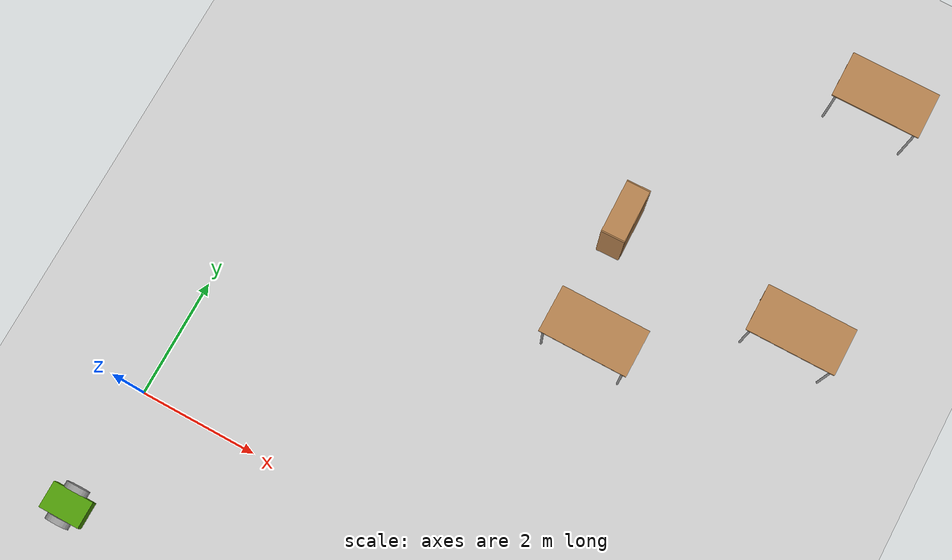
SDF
<sdf version="1.6">
 <world name="default">
  <model name="ground_plane">
   <static>1</static>
   <link name="link">
    <collision name="collision">
     <geometry><plane><normal>0 0 1</normal><size>100 100</size></plane></geometry>
     <surface>
      <contact><collide_bitmask>65535</collide_bitmask></contact>
      <friction><ode><mu>100</mu><mu2>50</mu2></ode></friction>
     </surface>
    </collision>
    <visual name="visual">
     <cast_shadows>0</cast_shadows>
     <geometry><plane><normal>0 0 1</normal><size>100 100</size></plane></geometry>
     <material>
      <script><uri>file://media/materials/scripts/gazebo.material</uri><name>Gazebo/Grey</name></script>
     </material>
    </visual>
   </link>
  </model>
  <model name="table_7">
   <static>1</static>
   <link name="link">
    <collision name="surface">
     <pose>0 0 1 0 -0 0</pose>
     <geometry><box><size>1.5 0.8 0.03</size></box></geometry>
     <surface><friction><ode><mu>0.6</mu><mu2>0.6</mu2></ode></friction></surface>
    </collision>
    <visual name="visual1">
     <pose>0 0 1 0 -0 0</pose>
     <geometry><box><size>1.5 0.8 0.03</size></box></geometry>
     <material>
      <script><uri>file://media/materials/scripts/gazebo.material</uri><name>Gazebo/Wood</name></script>
     </material>
    </visual>
    <collision name="front_left_leg">
     <pose>0.68 0.38 0.5 0 -0 0</pose>
     <geometry><cylinder><radius>0.02</radius><length>1</length></cylinder></geometry>
    </collision>
    <visual name="front_left_leg">
     <pose>0.68 0.38 0.5 0 -0 0</pose>
     <geometry><cylinder><radius>0.02</radius><length>1</length></cylinder></geometry>
     <material>
      <script><uri>file://media/materials/scripts/gazebo.material</uri><name>Gazebo/Grey</name></script>
     </material>
    </visual>
    <collision name="front_right_leg">
     <pose>0.68 -0.38 0.5 0 -0 0</pose>
     <geometry><cylinder><radius>0.02</radius><length>1</length></cylinder></geometry>
    </collision>
    <visual name="front_right_leg">
     <pose>0.68 -0.38 0.5 0 -0 0</pose>
     <geometry><cylinder><radius>0.02</radius><length>1</length></cylinder></geometry>
     <material>
      <script><uri>file://media/materials/scripts/gazebo.material</uri><name>Gazebo/Grey</name></script>
     </material>
    </visual>
    <collision name="back_right_leg">
     <pose>-0.68 -0.38 0.5 0 -0 0</pose>
     <geometry><cylinder><radius>0.02</radius><length>1</length></cylinder></geometry>
    </collision>
    <visual name="back_right_leg">
     <pose>-0.68 -0.38 0.5 0 -0 0</pose>
     <geometry><cylinder><radius>0.02</radius><length>1</length></cylinder></geometry>
     <material>
      <script><uri>file://media/materials/scripts/gazebo.material</uri><name>Gazebo/Grey</name></script>
     </material>
    </visual>
    <collision name="back_left_leg">
     <pose>-0.68 0.38 0.5 0 -0 0</pose>
     <geometry><cylinder><radius>0.02</radius><length>1</length></cylinder></geometry>
    </collision>
    <visual name="back_left_leg">
     <pose>-0.68 0.38 0.5 0 -0 0</pose>
     <geometry><cylinder><radius>0.02</radius><length>1</length></cylinder></geometry>
     <material>
      <script><uri>file://media/materials/scripts/gazebo.material</uri><name>Gazebo/Grey</name></script>
     </material>
    </visual>
   </link>
   <pose>5.79968 4.06342 0 0 -0 0</pose>
  </model>
  <model name="table_8">
   <static>1</static>
   <link name="link">
    <collision name="surface">
     <pose>0 0 1 0 -0 0</pose>
     <geometry><box><size>1.5 0.8 0.03</size></box></geometry>
     <surface><friction><ode><mu>0.6</mu><mu2>0.6</mu2></ode></friction></surface>
    </collision>
    <visual name="visual1">
     <pose>0 0 1 0 -0 0</pose>
     <geometry><box><size>1.5 0.8 0.03</size></box></geometry>
     <material>
      <script><uri>file://media/materials/scripts/gazebo.material</uri><name>Gazebo/Wood</name></script>
     </material>
    </visual>
    <collision name="front_left_leg">
     <pose>0.68 0.38 0.5 0 -0 0</pose>
     <geometry><cylinder><radius>0.02</radius><length>1</length></cylinder></geometry>
    </collision>
    <visual name="front_left_leg">
     <pose>0.68 0.38 0.5 0 -0 0</pose>
     <geometry><cylinder><radius>0.02</radius><length>1</length></cylinder></geometry>
     <material>
      <script><uri>file://media/materials/scripts/gazebo.material</uri><name>Gazebo/Grey</name></script>
     </material>
    </visual>
    <collision name="front_right_leg">
     <pose>0.68 -0.38 0.5 0 -0 0</pose>
     <geometry><cylinder><radius>0.02</radius><length>1</length></cylinder></geometry>
    </collision>
    <visual name="front_right_leg">
     <pose>0.68 -0.38 0.5 0 -0 0</pose>
     <geometry><cylinder><radius>0.02</radius><length>1</length></cylinder></geometry>
     <material>
      <script><uri>file://media/materials/scripts/gazebo.material</uri><name>Gazebo/Grey</name></script>
     </material>
    </visual>
    <collision name="back_right_leg">
     <pose>-0.68 -0.38 0.5 0 -0 0</pose>
     <geometry><cylinder><radius>0.02</radius><length>1</length></cylinder></geometry>
    </collision>
    <visual name="back_right_leg">
     <pose>-0.68 -0.38 0.5 0 -0 0</pose>
     <geometry><cylinder><radius>0.02</radius><length>1</length></cylinder></geometry>
     <material>
      <script><uri>file://media/materials/scripts/gazebo.material</uri><name>Gazebo/Grey</name></script>
     </material>
    </visual>
    <collision name="back_left_leg">
     <pose>-0.68 0.38 0.5 0 -0 0</pose>
     <geometry><cylinder><radius>0.02</radius><length>1</length></cylinder></geometry>
    </collision>
    <visual name="back_left_leg">
     <pose>-0.68 0.38 0.5 0 -0 0</pose>
     <geometry><cylinder><radius>0.02</radius><length>1</length></cylinder></geometry>
     <material>
      <script><uri>file://media/materials/scripts/gazebo.material</uri><name>Gazebo/Grey</name></script>
     </material>
    </visual>
   </link>
   <pose>8.08114 9.58618 0 0 -0 0</pose>
  </model>
  <model name="table_9">
   <static>1</static>
   <link name="link">
    <collision name="surface">
     <pose>0 0 1 0 -0 0</pose>
     <geometry><box><size>1.5 0.8 0.03</size></box></geometry>
     <surface><friction><ode><mu>0.6</mu><mu2>0.6</mu2></ode></friction></surface>
    </collision>
    <visual name="visual1">
     <pose>0 0 1 0 -0 0</pose>
     <geometry><box><size>1.5 0.8 0.03</size></box></geometry>
     <material>
      <script><uri>file://media/materials/scripts/gazebo.material</uri><name>Gazebo/Wood</name></script>
     </material>
    </visual>
    <collision name="front_left_leg">
     <pose>0.68 0.38 0.5 0 -0 0</pose>
     <geometry><cylinder><radius>0.02</radius><length>1</length></cylinder></geometry>
    </collision>
    <visual name="front_left_leg">
     <pose>0.68 0.38 0.5 0 -0 0</pose>
     <geometry><cylinder><radius>0.02</radius><length>1</length></cylinder></geometry>
     <material>
      <script><uri>file://media/materials/scripts/gazebo.material</uri><name>Gazebo/Grey</name></script>
     </material>
    </visual>
    <collision name="front_right_leg">
     <pose>0.68 -0.38 0.5 0 -0 0</pose>
     <geometry><cylinder><radius>0.02</radius><length>1</length></cylinder></geometry>
    </collision>
    <visual name="front_right_leg">
     <pose>0.68 -0.38 0.5 0 -0 0</pose>
     <geometry><cylinder><radius>0.02</radius><length>1</length></cylinder></geometry>
     <material>
      <script><uri>file://media/materials/scripts/gazebo.material</uri><name>Gazebo/Grey</name></script>
     </material>
    </visual>
    <collision name="back_right_leg">
     <pose>-0.68 -0.38 0.5 0 -0 0</pose>
     <geometry><cylinder><radius>0.02</radius><length>1</length></cylinder></geometry>
    </collision>
    <visual name="back_right_leg">
     <pose>-0.68 -0.38 0.5 0 -0 0</pose>
     <geometry><cylinder><radius>0.02</radius><length>1</length></cylinder></geometry>
     <material>
      <script><uri>file://media/materials/scripts/gazebo.material</uri><name>Gazebo/Grey</name></script>
     </material>
    </visual>
    <collision name="back_left_leg">
     <pose>-0.68 0.38 0.5 0 -0 0</pose>
     <geometry><cylinder><radius>0.02</radius><length>1</length></cylinder></geometry>
    </collision>
    <visual name="back_left_leg">
     <pose>-0.68 0.38 0.5 0 -0 0</pose>
     <geometry><cylinder><radius>0.02</radius><length>1</length></cylinder></geometry>
     <material>
      <script><uri>file://media/materials/scripts/gazebo.material</uri><name>Gazebo/Grey</name></script>
     </material>
    </visual>
   </link>
   <pose>8.56107 5.58257 0 0 -0 0</pose>
  </model>
  <model name="bookshelf_4">
   <static>1</static>
   <link name="link">
    <inertial><mass>1</mass></inertial>
    <collision name="back">
     <pose>0 0.005 0.6 0 -0 0</pose>
     <geometry><box><size>0.9 0.01 1.2</size></box></geometry>
    </collision>
    <visual name="visual1">
     <pose>0 0.005 0.6 0 -0 0</pose>
     <geometry><box><size>0.9 0.01 1.2</size></box></geometry>
     <material>
      <script><uri>file://media/materials/scripts/gazebo.material</uri><name>Gazebo/Wood</name></script>
     </material>
    </visual>
    <collision name="left_side">
     <pose>0.45 -0.195 0.6 0 -0 0</pose>
     <geometry><box><size>0.02 0.4 1.2</size></box></geometry>
    </collision>
    <visual name="visual2">
     <pose>0.45 -0.195 0.6 0 -0 0</pose>
     <geometry><box><size>0.02 0.4 1.2</size></box></geometry>
     <material>
      <script><uri>file://media/materials/scripts/gazebo.material</uri><name>Gazebo/Wood</name></script>
     </material>
    </visual>
    <collision name="right_side">
     <pose>-0.45 -0.195 0.6 0 -0 0</pose>
     <geometry><box><size>0.02 0.4 1.2</size></box></geometry>
    </collision>
    <visual name="visual3">
     <pose>-0.45 -0.195 0.6 0 -0 0</pose>
     <geometry><box><size>0.02 0.4 1.2</size></box></geometry>
     <material>
      <script><uri>file://media/materials/scripts/gazebo.material</uri><name>Gazebo/Wood</name></script>
     </material>
    </visual>
    <collision name="bottom">
     <pose>0 -0.195 0.03 0 -0 0</pose>
     <geometry><box><size>0.88 0.4 0.06</size></box></geometry>
    </collision>
    <visual name="visual4">
     <pose>0 -0.195 0.03 0 -0 0</pose>
     <geometry><box><size>0.88 0.4 0.06</size></box></geometry>
     <material>
      <script><uri>file://media/materials/scripts/gazebo.material</uri><name>Gazebo/Wood</name></script>
     </material>
    </visual>
    <collision name="top">
     <pose>0 -0.195 1.19 0 -0 0</pose>
     <geometry><box><size>0.88 0.4 0.02</size></box></geometry>
    </collision>
    <visual name="visual5">
     <pose>0 -0.195 1.19 0 -0 0</pose>
     <geometry><box><size>0.88 0.4 0.02</size></box></geometry>
     <material>
      <script><uri>file://media/materials/scripts/gazebo.material</uri><name>Gazebo/Wood</name></script>
     </material>
    </visual>
    <collision name="low_shelf">
     <pose>0 -0.195 0.43 0 -0 0</pose>
     <geometry><box><size>0.88 0.4 0.02</size></box></geometry>
    </collision>
    <visual name="visual6">
     <pose>0 -0.195 0.43 0 -0 0</pose>
     <geometry><box><size>0.88 0.4 0.02</size></box></geometry>
     <material>
      <script><uri>file://media/materials/scripts/gazebo.material</uri><name>Gazebo/Wood</name></script>
     </material>
    </visual>
    <collision name="high_shelf">
     <pose>0 -0.195 0.8 0 -0 0</pose>
     <geometry><box><size>0.88 0.4 0.02</size></box></geometry>
    </collision>
    <visual name="visual7">
     <pose>0 -0.195 0.8 0 -0 0</pose>
     <geometry><box><size>0.88 0.4 0.02</size></box></geometry>
     <material>
      <script><uri>file://media/materials/scripts/gazebo.material</uri><name>Gazebo/Wood</name></script>
     </material>
    </visual>
   </link>
   <pose>5.56053 5.91855 0 0 0 -1.55093</pose>
  </model>
  <model name="robot_0">
   <link name="link_0">
    <inertial>
     <mass>1</mass>
     <inertia>
      <ixx>0.166667</ixx>
      <ixy>0</ixy>
      <ixz>0</ixz>
      <iyy>0.166667</iyy>
      <iyz>0</iyz>
      <izz>0.166667</izz>
     </inertia>
    </inertial>
    <visual name="visual">
     <geometry><box><size>0.7 0.45 0.2</size></box></geometry>
     <material>
      <lighting>1</lighting>
      <script><uri>file://media/materials/scripts/gazebo.material</uri><name>Gazebo/Grey</name></script>
      <shader type="pixel"><normal_map>__default__</normal_map></shader>
      <ambient>0.306 0.604 0.024 1</ambient>
      <diffuse>0.306 0.604 0.024 1</diffuse>
      <specular>0.306 0.604 0.024 1</specular>
      <emissive>0 0 0 1</emissive>
     </material>
    </visual>
    <collision name="collision">
     <geometry><box><size>0.7 0.45 0.2</size></box></geometry>
     <surface>
      <friction>
       <ode><mu>1</mu><mu2>1</mu2><fdir1>0 0 0</fdir1><slip1>0</slip1><slip2>0</slip2></ode>
       <torsional>
        <coefficient>1</coefficient>
        <patch_radius>0</patch_radius>
        <surface_radius>0</surface_radius>
        <use_patch_radius>1</use_patch_radius>
        <ode><slip>0</slip></ode>
       </torsional>
      </friction>
      <bounce><restitution_coefficient>0</restitution_coefficient><threshold>1e+06</threshold></bounce>
      <contact>
       <collide_without_contact>0</collide_without_contact>
       <collide_without_contact_bitmask>1</collide_without_contact_bitmask>
       <collide_bitmask>1</collide_bitmask>
       <ode>
        <soft_cfm>0</soft_cfm>
        <soft_erp>0.2</soft_erp>
        <kp>1e+13</kp>
        <kd>1</kd>
        <max_vel>0.01</max_vel>
        <min_depth>0</min_depth>
       </ode>
       <bullet>
        <split_impulse>1</split_impulse>
        <split_impulse_penetration_threshold>-0.01</split_impulse_penetration_threshold>
        <soft_cfm>0</soft_cfm>
        <soft_erp>0.2</soft_erp>
        <kp>1e+13</kp>
        <kd>1</kd>
       </bullet>
      </contact>
     </surface>
    </collision>
   </link>
   <link name="link_1">
    <inertial>
     <mass>1</mass>
     <inertia><ixx>0.145833</ixx><ixy>0</ixy><ixz>0</ixz><iyy>0.145833</iyy><iyz>0</iyz><izz>0.125</izz></inertia>
    </inertial>
    <pose>-0 -0.275019 0 1.5707 -0 0</pose>
    <visual name="visual">
     <geometry><cylinder><radius>0.2</radius><length>0.1</length></cylinder></geometry>
     <material>
      <lighting>1</lighting>
      <script><uri>file://media/materials/scripts/gazebo.material</uri><name>Gazebo/Grey</name></script>
      <shader type="pixel"><normal_map>__default__</normal_map></shader>
      <ambient>0.008 0.008 0.008 1</ambient>
      <diffuse>0 0 0 1</diffuse>
      <specular>0 0 0 1</specular>
      <emissive>0 0 0 1</emissive>
     </material>
    </visual>
    <collision name="collision">
     <geometry><cylinder><radius>0.2</radius><length>0.1</length></cylinder></geometry>
     <surface>
      <friction>
       <ode><mu>1</mu><mu2>1</mu2><fdir1>0 0 0</fdir1><slip1>0</slip1><slip2>0</slip2></ode>
       <torsional>
        <coefficient>1</coefficient>
        <patch_radius>0</patch_radius>
        <surface_radius>0</surface_radius>
        <use_patch_radius>1</use_patch_radius>
        <ode><slip>0</slip></ode>
       </torsional>
      </friction>
      <bounce><restitution_coefficient>0</restitution_coefficient><threshold>1e+06</threshold></bounce>
      <contact>
       <collide_without_contact>0</collide_without_contact>
       <collide_without_contact_bitmask>1</collide_without_contact_bitmask>
       <collide_bitmask>1</collide_bitmask>
       <ode>
        <soft_cfm>0</soft_cfm>
        <soft_erp>0.2</soft_erp>
        <kp>1e+13</kp>
        <kd>1</kd>
        <max_vel>0.01</max_vel>
        <min_depth>0</min_depth>
       </ode>
       <bullet>
        <split_impulse>1</split_impulse>
        <split_impulse_penetration_threshold>-0.01</split_impulse_penetration_threshold>
        <soft_cfm>0</soft_cfm>
        <soft_erp>0.2</soft_erp>
        <kp>1e+13</kp>
        <kd>1</kd>
       </bullet>
      </contact>
     </surface>
    </collision>
   </link>
   <link name="link_1_clone">
    <inertial>
     <mass>1</mass>
     <inertia><ixx>0.145833</ixx><ixy>0</ixy><ixz>0</ixz><iyy>0.145833</iyy><iyz>0</iyz><izz>0.125</izz></inertia>
    </inertial>
    <pose>-0 0.27502 0 1.5707 -0 0</pose>
    <visual name="visual">
     <geometry><cylinder><radius>0.2</radius><length>0.1</length></cylinder></geometry>
     <material>
      <lighting>1</lighting>
      <script><uri>file://media/materials/scripts/gazebo.material</uri><name>Gazebo/Grey</name></script>
      <shader type="pixel"><normal_map>__default__</normal_map></shader>
      <ambient>0 0 0 1</ambient>
      <diffuse>0 0 0 1</diffuse>
      <specular>0 0 0 1</specular>
      <emissive>0.008 0.008 0.008 1</emissive>
     </material>
    </visual>
    <collision name="collision">
     <geometry><cylinder><radius>0.2</radius><length>0.1</length></cylinder></geometry>
     <surface>
      <friction>
       <ode><mu>1</mu><mu2>1</mu2><fdir1>0 0 0</fdir1><slip1>0</slip1><slip2>0</slip2></ode>
       <torsional>
        <coefficient>1</coefficient>
        <patch_radius>0</patch_radius>
        <surface_radius>0</surface_radius>
        <use_patch_radius>1</use_patch_radius>
        <ode><slip>0</slip></ode>
       </torsional>
      </friction>
      <bounce><restitution_coefficient>0</restitution_coefficient><threshold>1e+06</threshold></bounce>
      <contact>
       <collide_without_contact>0</collide_without_contact>
       <collide_without_contact_bitmask>1</collide_without_contact_bitmask>
       <collide_bitmask>1</collide_bitmask>
       <ode>
        <soft_cfm>0</soft_cfm>
        <soft_erp>0.2</soft_erp>
        <kp>1e+13</kp>
        <kd>1</kd>
        <max_vel>0.01</max_vel>
        <min_depth>0</min_depth>
       </ode>
       <bullet>
        <split_impulse>1</split_impulse>
        <split_impulse_penetration_threshold>-0.01</split_impulse_penetration_threshold>
        <soft_cfm>0</soft_cfm>
        <soft_erp>0.2</soft_erp>
        <kp>1e+13</kp>
        <kd>1</kd>
       </bullet>
      </contact>
     </surface>
    </collision>
   </link>
   <joint name="link_0_JOINT_0" type="revolute">
    <parent>link_0</parent>
    <child>link_1_clone</child>
    <axis>
     <xyz>0 0 1</xyz>
     <limit>
      <lower>-1.79769e+308</lower>
      <upper>1.79769e+308</upper>
      <effort>-1</effort>
      <velocity>-1</velocity>
     </limit>
     <dynamics>
      <spring_reference>0</spring_reference>
      <spring_stiffness>0</spring_stiffness>
      <damping>0</damping>
     </dynamics>
     <use_parent_model_frame>0</use_parent_model_frame>
    </axis>
    <physics>
     <ode><limit><cfm>0</cfm><erp>0.2</erp></limit><suspension><cfm>0</cfm><erp>0.2</erp></suspension></ode>
    </physics>
   </joint>
   <joint name="link_0_JOINT_1" type="revolute">
    <parent>link_0</parent>
    <child>link_1</child>
    <axis>
     <xyz>0 0 1</xyz>
     <limit>
      <lower>-1.79769e+308</lower>
      <upper>1.79769e+308</upper>
      <effort>-1</effort>
      <velocity>-1</velocity>
     </limit>
     <dynamics>
      <spring_reference>0</spring_reference>
      <spring_stiffness>0</spring_stiffness>
      <damping>0</damping>
     </dynamics>
     <use_parent_model_frame>0</use_parent_model_frame>
    </axis>
    <physics>
     <ode><limit><cfm>0</cfm><erp>0.2</erp></limit><suspension><cfm>0</cfm><erp>0.2</erp></suspension></ode>
    </physics>
   </joint>
   <static>0</static>
   <pose>-0.07839 -2.04257 0.200003 5e-06 -0.000233 8e-06</pose>
  </model>
 </world>
</sdf>
